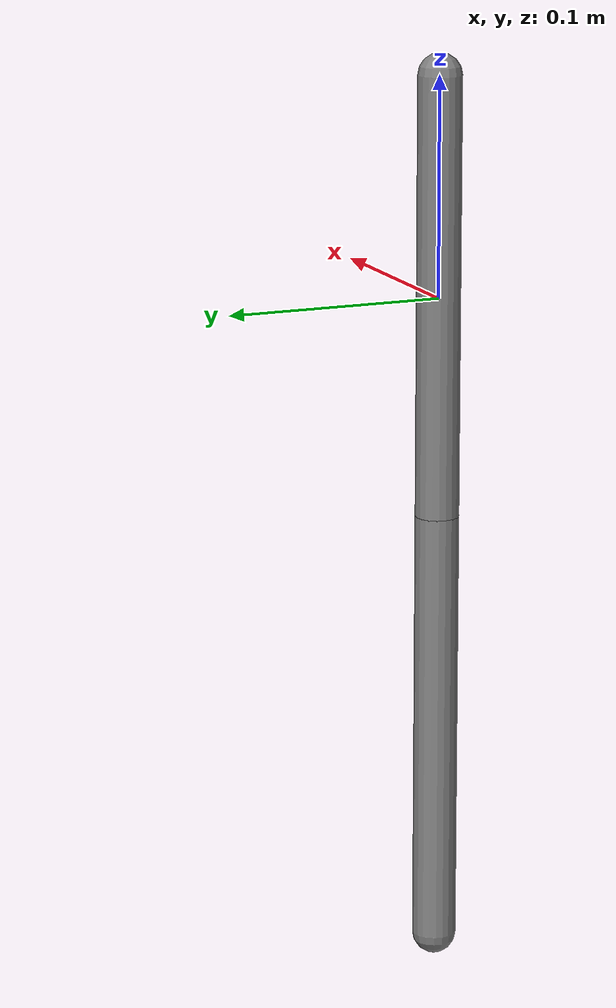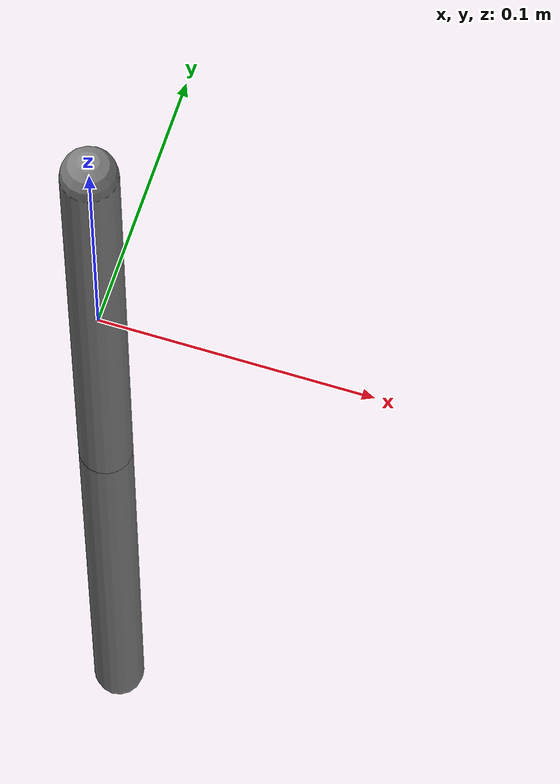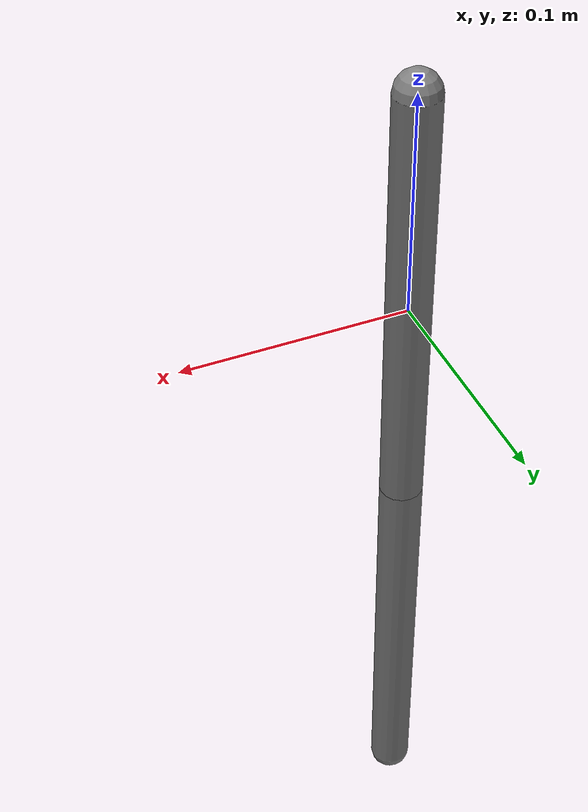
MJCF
<?xml version="1.0"?>
<mujoco model="robot">
  <worldbody>
    <body>
      <joint type="hinge" axis="0 1 0" pos="0 0 0.1" damping="1e-3"/>
      <geom type="capsule" size="0.01 0.1"/>
      <body>
        <joint type="hinge" axis="0 1 0" pos="0 0 -0.1" damping="1e-3"/>
        <geom type="capsule" size="0.01 0.1" pos="0 0 -0.2"/>
      </body>
    </body>
  </worldbody>
</mujoco>
